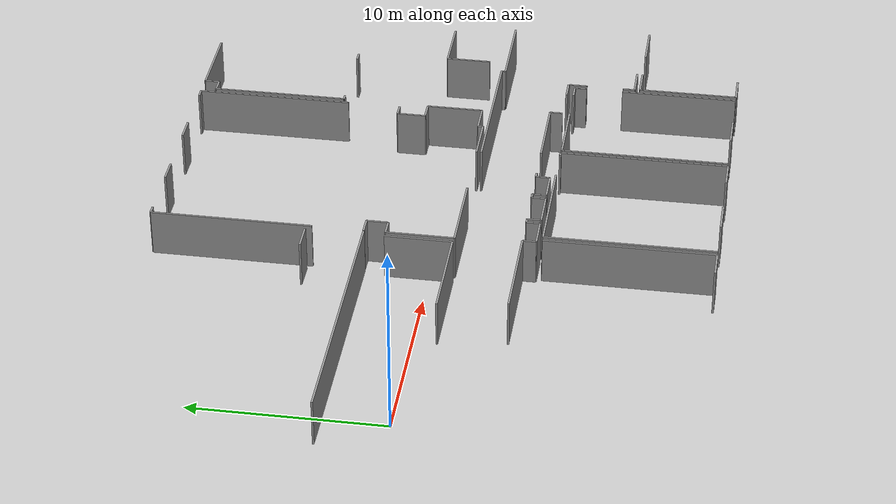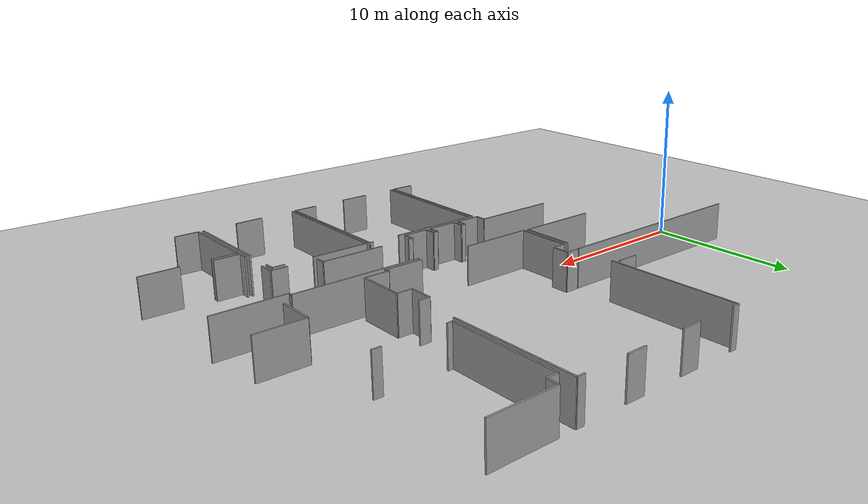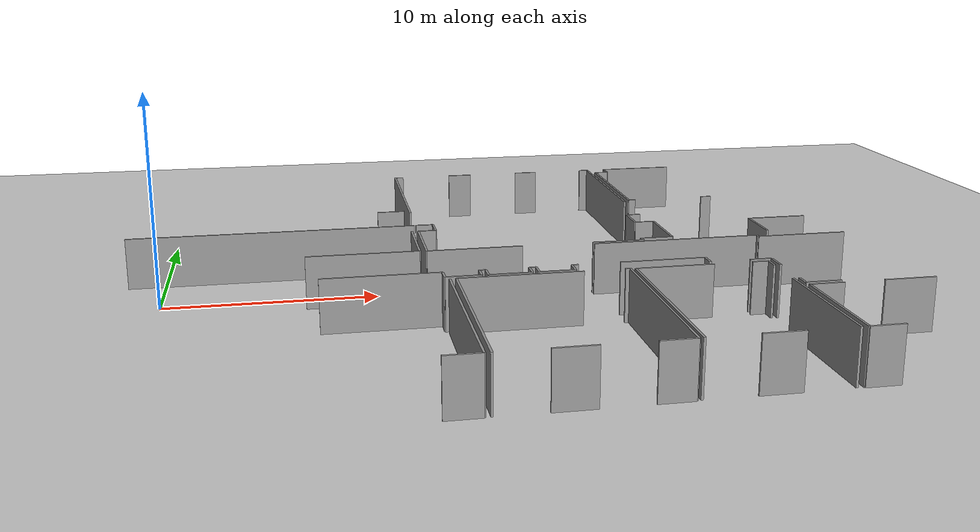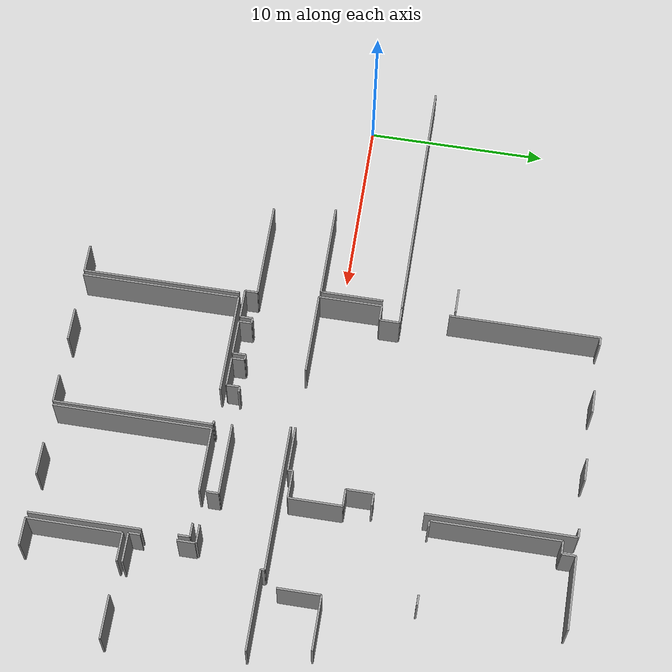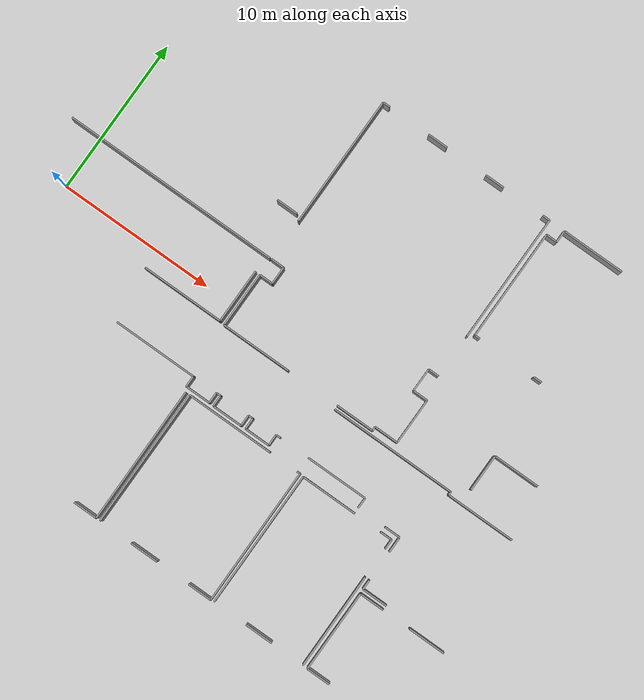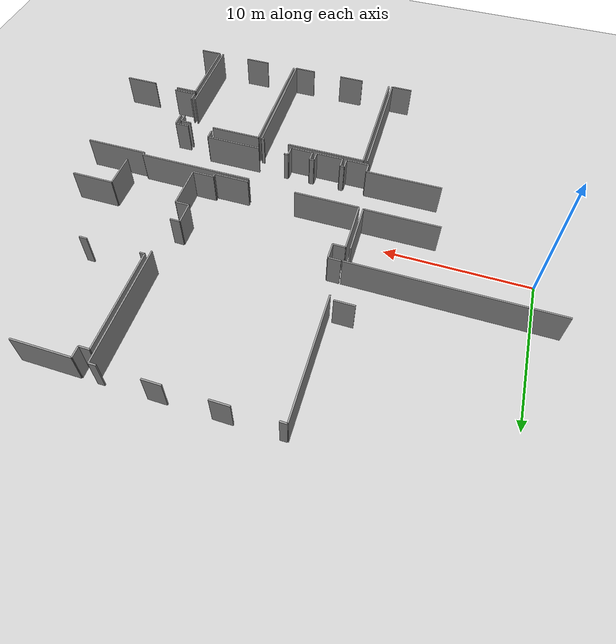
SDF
<sdf version="1.6">
 <world name="default">
  <model name="ground_plane">
   <static>1</static>
   <link name="link">
    <collision name="collision">
     <geometry><plane><normal>0 0 1</normal><size>100 100</size></plane></geometry>
     <surface><friction><ode><mu>100</mu><mu2>50</mu2></ode></friction></surface>
    </collision>
    <visual name="visual">
     <cast_shadows>0</cast_shadows>
     <geometry><plane><normal>0 0 1</normal><size>100 100</size></plane></geometry>
     <material>
      <script><uri>file://media/materials/scripts/gazebo.material</uri><name>Gazebo/Grey</name></script>
     </material>
    </visual>
   </link>
  </model>
  <model name="0510032262_A_40_1_104">
   <static>1</static>
   <link name="Wall_30">
    <collision name="Wall_30_Collision">
     <geometry><box><size>13.8981502047 0.1 2.5</size></box></geometry>
     <pose>6.94907510233 0 1.25 0 0 0</pose>
    </collision>
    <visual name="Wall_30_Visual">
     <pose>6.94907510233 0 1.25 0 0 0</pose>
     <geometry><box><size>13.8981502047 0.1 2.5</size></box></geometry>
     <material>
      <script><uri>file://media/materials/scripts/gazebo.material</uri><name>Gazebo/Grey</name></script>
      <ambient>1 1 1 1</ambient>
     </material>
    </visual>
    <pose>59.66608497 -11.0591744138 0 0 0 3.14159265359</pose>
   </link>
   <link name="Wall_78">
    <collision name="Wall_78_Collision">
     <geometry><box><size>1.37233873782 0.1 2.5</size></box></geometry>
     <pose>0.686169368912 0 1.25 0 0 0</pose>
    </collision>
    <visual name="Wall_78_Visual">
     <pose>0.686169368912 0 1.25 0 0 0</pose>
     <geometry><box><size>1.37233873782 0.1 2.5</size></box></geometry>
     <material>
      <script><uri>file://media/materials/scripts/gazebo.material</uri><name>Gazebo/Grey</name></script>
      <ambient>1 1 1 1</ambient>
     </material>
    </visual>
    <pose>59.4446171907 -8.09379065266 0 0 0 3.14159265359</pose>
   </link>
   <link name="Wall_143">
    <collision name="Wall_143_Collision">
     <geometry><box><size>8.13199225815 0.1 2.5</size></box></geometry>
     <pose>4.06599612907 0 1.25 0 0 0</pose>
    </collision>
    <visual name="Wall_143_Visual">
     <pose>4.06599612907 0 1.25 0 0 0</pose>
     <geometry><box><size>8.13199225815 0.1 2.5</size></box></geometry>
     <material>
      <script><uri>file://media/materials/scripts/gazebo.material</uri><name>Gazebo/Grey</name></script>
      <ambient>1 1 1 1</ambient>
     </material>
    </visual>
    <pose>67.6735729924 -15.9402227369 0 0 0 0.0</pose>
   </link>
   <link name="Wall_144">
    <collision name="Wall_144_Collision">
     <geometry><box><size>0.217787225942 0.1 2.5</size></box></geometry>
     <pose>0.108893612971 0 1.25 0 0 0</pose>
    </collision>
    <visual name="Wall_144_Visual">
     <pose>0.108893612971 0 1.25 0 0 0</pose>
     <geometry><box><size>0.217787225942 0.1 2.5</size></box></geometry>
     <material>
      <script><uri>file://media/materials/scripts/gazebo.material</uri><name>Gazebo/Grey</name></script>
      <ambient>1 1 1 1</ambient>
     </material>
    </visual>
    <pose>75.8055652505 -15.9402227369 0 0 0 -1.57079632679</pose>
   </link>
   <link name="Wall_145">
    <collision name="Wall_145_Collision">
     <geometry><box><size>4.41920233525 0.1 2.5</size></box></geometry>
     <pose>2.20960116762 0 1.25 0 0 0</pose>
    </collision>
    <visual name="Wall_145_Visual">
     <pose>2.20960116762 0 1.25 0 0 0</pose>
     <geometry><box><size>4.41920233525 0.1 2.5</size></box></geometry>
     <material>
      <script><uri>file://media/materials/scripts/gazebo.material</uri><name>Gazebo/Grey</name></script>
      <ambient>1 1 1 1</ambient>
     </material>
    </visual>
    <pose>75.8055652505 -16.1580099629 0 0 0 0.0</pose>
   </link>
   <link name="Wall_149">
    <collision name="Wall_149_Collision">
     <geometry><box><size>1.00859853412 0.1 2.5</size></box></geometry>
     <pose>0.504299267062 0 1.25 0 0 0</pose>
    </collision>
    <visual name="Wall_149_Visual">
     <pose>0.504299267062 0 1.25 0 0 0</pose>
     <geometry><box><size>1.00859853412 0.1 2.5</size></box></geometry>
     <material>
      <script><uri>file://media/materials/scripts/gazebo.material</uri><name>Gazebo/Grey</name></script>
      <ambient>1 1 1 1</ambient>
     </material>
    </visual>
    <pose>74.9202017959 -19.7441380842 0 0 0 3.14159265359</pose>
   </link>
   <link name="Wall_150">
    <collision name="Wall_150_Collision">
     <geometry><box><size>0.675952660469 0.1 2.5</size></box></geometry>
     <pose>0.337976330234 0 1.25 0 0 0</pose>
    </collision>
    <visual name="Wall_150_Visual">
     <pose>0.337976330234 0 1.25 0 0 0</pose>
     <geometry><box><size>0.675952660469 0.1 2.5</size></box></geometry>
     <material>
      <script><uri>file://media/materials/scripts/gazebo.material</uri><name>Gazebo/Grey</name></script>
      <ambient>1 1 1 1</ambient>
     </material>
    </visual>
    <pose>72.0332518958 -19.7441380842 0 0 0 1.57079632679</pose>
   </link>
   <link name="Wall_151">
    <collision name="Wall_151_Collision">
     <geometry><box><size>3.98883142431 0.1 2.5</size></box></geometry>
     <pose>1.99441571216 0 1.25 0 0 0</pose>
    </collision>
    <visual name="Wall_151_Visual">
     <pose>1.99441571216 0 1.25 0 0 0</pose>
     <geometry><box><size>3.98883142431 0.1 2.5</size></box></geometry>
     <material>
      <script><uri>file://media/materials/scripts/gazebo.material</uri><name>Gazebo/Grey</name></script>
      <ambient>1 1 1 1</ambient>
     </material>
    </visual>
    <pose>72.0332518958 -19.0681854237 0 0 0 3.14159265359</pose>
   </link>
   <link name="Wall_152">
    <collision name="Wall_152_Collision">
     <geometry><box><size>0.297490243361 0.1 2.5</size></box></geometry>
     <pose>0.14874512168 0 1.25 0 0 0</pose>
    </collision>
    <visual name="Wall_152_Visual">
     <pose>0.14874512168 0 1.25 0 0 0</pose>
     <geometry><box><size>0.297490243361 0.1 2.5</size></box></geometry>
     <material>
      <script><uri>file://media/materials/scripts/gazebo.material</uri><name>Gazebo/Grey</name></script>
      <ambient>1 1 1 1</ambient>
     </material>
    </visual>
    <pose>66.1046419393 -19.0681854237 0 0 0 3.14159265359</pose>
   </link>
   <link name="Wall_153">
    <collision name="Wall_153_Collision">
     <geometry><box><size>0.733445442142 0.1 2.5</size></box></geometry>
     <pose>0.366722721071 0 1.25 0 0 0</pose>
    </collision>
    <visual name="Wall_153_Visual">
     <pose>0.366722721071 0 1.25 0 0 0</pose>
     <geometry><box><size>0.733445442142 0.1 2.5</size></box></geometry>
     <material>
      <script><uri>file://media/materials/scripts/gazebo.material</uri><name>Gazebo/Grey</name></script>
      <ambient>1 1 1 1</ambient>
     </material>
    </visual>
    <pose>65.8071516959 -19.0681854237 0 0 0 -1.57079632679</pose>
   </link>
   <link name="Wall_154">
    <collision name="Wall_154_Collision">
     <geometry><box><size>1.62185487197 0.1 2.5</size></box></geometry>
     <pose>0.810927435987 0 1.25 0 0 0</pose>
    </collision>
    <visual name="Wall_154_Visual">
     <pose>0.810927435987 0 1.25 0 0 0</pose>
     <geometry><box><size>1.62185487197 0.1 2.5</size></box></geometry>
     <material>
      <script><uri>file://media/materials/scripts/gazebo.material</uri><name>Gazebo/Grey</name></script>
      <ambient>1 1 1 1</ambient>
     </material>
    </visual>
    <pose>65.8071516959 -19.8016308659 0 0 0 3.14159265359</pose>
   </link>
   <link name="Wall_155">
    <collision name="Wall_155_Collision">
     <geometry><box><size>0.719738553796 0.1 2.5</size></box></geometry>
     <pose>0.359869276898 0 1.25 0 0 0</pose>
    </collision>
    <visual name="Wall_155_Visual">
     <pose>0.359869276898 0 1.25 0 0 0</pose>
     <geometry><box><size>0.719738553796 0.1 2.5</size></box></geometry>
     <material>
      <script><uri>file://media/materials/scripts/gazebo.material</uri><name>Gazebo/Grey</name></script>
      <ambient>1 1 1 1</ambient>
     </material>
    </visual>
    <pose>64.1852968239 -19.8016308659 0 0 0 1.57079632679</pose>
   </link>
   <link name="Wall_156">
    <collision name="Wall_156_Collision">
     <geometry><box><size>0.307135831456 0.1 2.5</size></box></geometry>
     <pose>0.153567915728 0 1.25 0 0 0</pose>
    </collision>
    <visual name="Wall_156_Visual">
     <pose>0.153567915728 0 1.25 0 0 0</pose>
     <geometry><box><size>0.307135831456 0.1 2.5</size></box></geometry>
     <material>
      <script><uri>file://media/materials/scripts/gazebo.material</uri><name>Gazebo/Grey</name></script>
      <ambient>1 1 1 1</ambient>
     </material>
    </visual>
    <pose>64.1852968239 -19.0818923121 0 0 0 3.14159265359</pose>
   </link>
   <link name="Wall_157">
    <collision name="Wall_157_Collision">
     <geometry><box><size>0.729384141892 0.1 2.5</size></box></geometry>
     <pose>0.364692070946 0 1.25 0 0 0</pose>
    </collision>
    <visual name="Wall_157_Visual">
     <pose>0.364692070946 0 1.25 0 0 0</pose>
     <geometry><box><size>0.729384141892 0.1 2.5</size></box></geometry>
     <material>
      <script><uri>file://media/materials/scripts/gazebo.material</uri><name>Gazebo/Grey</name></script>
      <ambient>1 1 1 1</ambient>
     </material>
    </visual>
    <pose>63.8781609925 -19.0818923121 0 0 0 -1.57079632679</pose>
   </link>
   <link name="Wall_158">
    <collision name="Wall_158_Collision">
     <geometry><box><size>1.94218992924 0.1 2.5</size></box></geometry>
     <pose>0.971094964622 0 1.25 0 0 0</pose>
    </collision>
    <visual name="Wall_158_Visual">
     <pose>0.971094964622 0 1.25 0 0 0</pose>
     <geometry><box><size>1.94218992924 0.1 2.5</size></box></geometry>
     <material>
      <script><uri>file://media/materials/scripts/gazebo.material</uri><name>Gazebo/Grey</name></script>
      <ambient>1 1 1 1</ambient>
     </material>
    </visual>
    <pose>63.8781609925 -19.811276454 0 0 0 3.14159265359</pose>
   </link>
   <link name="Wall_159">
    <collision name="Wall_159_Collision">
     <geometry><box><size>0.71808865057 0.1 2.5</size></box></geometry>
     <pose>0.359044325285 0 1.25 0 0 0</pose>
    </collision>
    <visual name="Wall_159_Visual">
     <pose>0.359044325285 0 1.25 0 0 0</pose>
     <geometry><box><size>0.71808865057 0.1 2.5</size></box></geometry>
     <material>
      <script><uri>file://media/materials/scripts/gazebo.material</uri><name>Gazebo/Grey</name></script>
      <ambient>1 1 1 1</ambient>
     </material>
    </visual>
    <pose>61.9359710632 -19.811276454 0 0 0 1.57079632679</pose>
   </link>
   <link name="Wall_160">
    <collision name="Wall_160_Collision">
     <geometry><box><size>0.292159786782 0.1 2.5</size></box></geometry>
     <pose>0.146079893391 0 1.25 0 0 0</pose>
    </collision>
    <visual name="Wall_160_Visual">
     <pose>0.146079893391 0 1.25 0 0 0</pose>
     <geometry><box><size>0.292159786782 0.1 2.5</size></box></geometry>
     <material>
      <script><uri>file://media/materials/scripts/gazebo.material</uri><name>Gazebo/Grey</name></script>
      <ambient>1 1 1 1</ambient>
     </material>
    </visual>
    <pose>61.9359710632 -19.0931878034 0 0 0 3.14159265359</pose>
   </link>
   <link name="Wall_161">
    <collision name="Wall_161_Collision">
     <geometry><box><size>0.700955040137 0.1 2.5</size></box></geometry>
     <pose>0.350477520069 0 1.25 0 0 0</pose>
    </collision>
    <visual name="Wall_161_Visual">
     <pose>0.350477520069 0 1.25 0 0 0</pose>
     <geometry><box><size>0.700955040137 0.1 2.5</size></box></geometry>
     <material>
      <script><uri>file://media/materials/scripts/gazebo.material</uri><name>Gazebo/Grey</name></script>
      <ambient>1 1 1 1</ambient>
     </material>
    </visual>
    <pose>61.6438112765 -19.0931878034 0 0 0 -1.57079632679</pose>
   </link>
   <link name="Wall_162">
    <collision name="Wall_162_Collision">
     <geometry><box><size>1.61055938065 0.1 2.5</size></box></geometry>
     <pose>0.805279690326 0 1.25 0 0 0</pose>
    </collision>
    <visual name="Wall_162_Visual">
     <pose>0.805279690326 0 1.25 0 0 0</pose>
     <geometry><box><size>1.61055938065 0.1 2.5</size></box></geometry>
     <material>
      <script><uri>file://media/materials/scripts/gazebo.material</uri><name>Gazebo/Grey</name></script>
      <ambient>1 1 1 1</ambient>
     </material>
    </visual>
    <pose>61.6438112765 -19.7941428435 0 0 0 3.14159265359</pose>
   </link>
   <link name="Wall_163">
    <collision name="Wall_163_Collision">
     <geometry><box><size>0.700955040137 0.1 2.5</size></box></geometry>
     <pose>0.350477520069 0 1.25 0 0 0</pose>
    </collision>
    <visual name="Wall_163_Visual">
     <pose>0.350477520069 0 1.25 0 0 0</pose>
     <geometry><box><size>0.700955040137 0.1 2.5</size></box></geometry>
     <material>
      <script><uri>file://media/materials/scripts/gazebo.material</uri><name>Gazebo/Grey</name></script>
      <ambient>1 1 1 1</ambient>
     </material>
    </visual>
    <pose>60.0332518958 -19.7941428435 0 0 0 1.57079632679</pose>
   </link>
   <link name="Wall_164">
    <collision name="Wall_164_Collision">
     <geometry><box><size>5.35127074277 0.1 2.5</size></box></geometry>
     <pose>2.67563537139 0 1.25 0 0 0</pose>
    </collision>
    <visual name="Wall_164_Visual">
     <pose>2.67563537139 0 1.25 0 0 0</pose>
     <geometry><box><size>5.35127074277 0.1 2.5</size></box></geometry>
     <material>
      <script><uri>file://media/materials/scripts/gazebo.material</uri><name>Gazebo/Grey</name></script>
      <ambient>1 1 1 1</ambient>
     </material>
    </visual>
    <pose>60.0332518958 -19.0931878034 0 0 0 3.14159265359</pose>
   </link>
   <link name="Wall_213">
    <collision name="Wall_213_Collision">
     <geometry><box><size>1.54329409525 0.1 2.5</size></box></geometry>
     <pose>0.771647047625 0 1.25 0 0 0</pose>
    </collision>
    <visual name="Wall_213_Visual">
     <pose>0.771647047625 0 1.25 0 0 0</pose>
     <geometry><box><size>1.54329409525 0.1 2.5</size></box></geometry>
     <material>
      <script><uri>file://media/materials/scripts/gazebo.material</uri><name>Gazebo/Grey</name></script>
      <ambient>1 1 1 1</ambient>
     </material>
    </visual>
    <pose>60.2236253451 -28.8609956531 0 0 0 3.14159265359</pose>
   </link>
   <link name="Wall_219">
    <collision name="Wall_219_Collision">
     <geometry><box><size>8.78106027468 0.1 2.5</size></box></geometry>
     <pose>4.39053013734 0 1.25 0 0 0</pose>
    </collision>
    <visual name="Wall_219_Visual">
     <pose>4.39053013734 0 1.25 0 0 0</pose>
     <geometry><box><size>8.78106027468 0.1 2.5</size></box></geometry>
     <material>
      <script><uri>file://media/materials/scripts/gazebo.material</uri><name>Gazebo/Grey</name></script>
      <ambient>1 1 1 1</ambient>
     </material>
    </visual>
    <pose>60.2042072532 -20.0799568487 0 0 0 -1.56858496427</pose>
   </link>
   <link name="Wall_220">
    <collision name="Wall_220_Collision">
     <geometry><box><size>1.54837072056 0.1 2.5</size></box></geometry>
     <pose>0.774185360282 0 1.25 0 0 0</pose>
    </collision>
    <visual name="Wall_220_Visual">
     <pose>0.774185360282 0 1.25 0 0 0</pose>
     <geometry><box><size>1.54837072056 0.1 2.5</size></box></geometry>
     <material>
      <script><uri>file://media/materials/scripts/gazebo.material</uri><name>Gazebo/Grey</name></script>
      <ambient>1 1 1 1</ambient>
     </material>
    </visual>
    <pose>68.2320017768 -28.8736872164 0 0 0 3.14159265359</pose>
   </link>
   <link name="Wall_221">
    <collision name="Wall_221_Collision">
     <geometry><box><size>1.82339689691 0.1 2.5</size></box></geometry>
     <pose>0.911698448456 0 1.25 0 0 0</pose>
    </collision>
    <visual name="Wall_221_Visual">
     <pose>0.911698448456 0 1.25 0 0 0</pose>
     <geometry><box><size>1.82339689691 0.1 2.5</size></box></geometry>
     <material>
      <script><uri>file://media/materials/scripts/gazebo.material</uri><name>Gazebo/Grey</name></script>
      <ambient>1 1 1 1</ambient>
     </material>
    </visual>
    <pose>64.4827870673 -28.8736872164 0 0 0 3.14159265359</pose>
   </link>
   <link name="Wall_222">
    <collision name="Wall_222_Collision">
     <geometry><box><size>8.79373036774 0.1 2.5</size></box></geometry>
     <pose>4.39686518387 0 1.25 0 0 0</pose>
    </collision>
    <visual name="Wall_222_Visual">
     <pose>4.39686518387 0 1.25 0 0 0</pose>
     <geometry><box><size>8.79373036774 0.1 2.5</size></box></geometry>
     <material>
      <script><uri>file://media/materials/scripts/gazebo.material</uri><name>Gazebo/Grey</name></script>
      <ambient>1 1 1 1</ambient>
     </material>
    </visual>
    <pose>60.4906558365 -28.8736872164 0 0 0 1.57079632679</pose>
   </link>
   <link name="Wall_223">
    <collision name="Wall_223_Collision">
     <geometry><box><size>5.62363169083 0.1 2.5</size></box></geometry>
     <pose>2.81181584542 0 1.25 0 0 0</pose>
    </collision>
    <visual name="Wall_223_Visual">
     <pose>2.81181584542 0 1.25 0 0 0</pose>
     <geometry><box><size>5.62363169083 0.1 2.5</size></box></geometry>
     <material>
      <script><uri>file://media/materials/scripts/gazebo.material</uri><name>Gazebo/Grey</name></script>
      <ambient>1 1 1 1</ambient>
     </material>
    </visual>
    <pose>60.4906558365 -20.0799568487 0 0 0 0.0</pose>
   </link>
   <link name="Wall_224">
    <collision name="Wall_224_Collision">
     <geometry><box><size>0.216898816512 0.1 2.5</size></box></geometry>
     <pose>0.108449408256 0 1.25 0 0 0</pose>
    </collision>
    <visual name="Wall_224_Visual">
     <pose>0.108449408256 0 1.25 0 0 0</pose>
     <geometry><box><size>0.216898816512 0.1 2.5</size></box></geometry>
     <material>
      <script><uri>file://media/materials/scripts/gazebo.material</uri><name>Gazebo/Grey</name></script>
      <ambient>1 1 1 1</ambient>
     </material>
    </visual>
    <pose>67.9860392804 -20.0799568487 0 0 0 0.0</pose>
   </link>
   <link name="Wall_225">
    <collision name="Wall_225_Collision">
     <geometry><box><size>8.793778396 0.1 2.5</size></box></geometry>
     <pose>4.396889198 0 1.25 0 0 0</pose>
    </collision>
    <visual name="Wall_225_Visual">
     <pose>4.396889198 0 1.25 0 0 0</pose>
     <geometry><box><size>8.793778396 0.1 2.5</size></box></geometry>
     <material>
      <script><uri>file://media/materials/scripts/gazebo.material</uri><name>Gazebo/Grey</name></script>
      <ambient>1 1 1 1</ambient>
     </material>
    </visual>
    <pose>68.2029380969 -20.0799568487 0 0 0 -1.56749129322</pose>
   </link>
   <link name="Wall_226">
    <collision name="Wall_226_Collision">
     <geometry><box><size>1.80220198623 0.1 2.5</size></box></geometry>
     <pose>0.901100993115 0 1.25 0 0 0</pose>
    </collision>
    <visual name="Wall_226_Visual">
     <pose>0.901100993115 0 1.25 0 0 0</pose>
     <geometry><box><size>1.80220198623 0.1 2.5</size></box></geometry>
     <material>
      <script><uri>file://media/materials/scripts/gazebo.material</uri><name>Gazebo/Grey</name></script>
      <ambient>1 1 1 1</ambient>
     </material>
    </visual>
    <pose>72.4836754767 -28.8483040899 0 0 0 3.14159265359</pose>
   </link>
   <link name="Wall_227">
    <collision name="Wall_227_Collision">
     <geometry><box><size>8.72849573246 0.1 2.5</size></box></geometry>
     <pose>4.36424786623 0 1.25 0 0 0</pose>
    </collision>
    <visual name="Wall_227_Visual">
     <pose>4.36424786623 0 1.25 0 0 0</pose>
     <geometry><box><size>8.72849573246 0.1 2.5</size></box></geometry>
     <material>
      <script><uri>file://media/materials/scripts/gazebo.material</uri><name>Gazebo/Grey</name></script>
      <ambient>1 1 1 1</ambient>
     </material>
    </visual>
    <pose>68.4477583526 -28.8483040899 0 0 0 1.57079632679</pose>
   </link>
   <link name="Wall_228">
    <collision name="Wall_228_Collision">
     <geometry><box><size>3.61544563252 0.1 2.5</size></box></geometry>
     <pose>1.80772281626 0 1.25 0 0 0</pose>
    </collision>
    <visual name="Wall_228_Visual">
     <pose>1.80772281626 0 1.25 0 0 0</pose>
     <geometry><box><size>3.61544563252 0.1 2.5</size></box></geometry>
     <material>
      <script><uri>file://media/materials/scripts/gazebo.material</uri><name>Gazebo/Grey</name></script>
      <ambient>1 1 1 1</ambient>
     </material>
    </visual>
    <pose>68.4477583526 -20.1198083574 0 0 0 0.0</pose>
   </link>
   <link name="Wall_229">
    <collision name="Wall_229_Collision">
     <geometry><box><size>0.767712663007 0.1 2.5</size></box></geometry>
     <pose>0.383856331504 0 1.25 0 0 0</pose>
    </collision>
    <visual name="Wall_229_Visual">
     <pose>0.383856331504 0 1.25 0 0 0</pose>
     <geometry><box><size>0.767712663007 0.1 2.5</size></box></geometry>
     <material>
      <script><uri>file://media/materials/scripts/gazebo.material</uri><name>Gazebo/Grey</name></script>
      <ambient>1 1 1 1</ambient>
     </material>
    </visual>
    <pose>73.8774629565 -20.1198083574 0 0 0 0.0</pose>
   </link>
   <link name="Wall_230">
    <collision name="Wall_230_Collision">
     <geometry><box><size>0.642320017768 0.1 2.5</size></box></geometry>
     <pose>0.321160008884 0 1.25 0 0 0</pose>
    </collision>
    <visual name="Wall_230_Visual">
     <pose>0.321160008884 0 1.25 0 0 0</pose>
     <geometry><box><size>0.642320017768 0.1 2.5</size></box></geometry>
     <material>
      <script><uri>file://media/materials/scripts/gazebo.material</uri><name>Gazebo/Grey</name></script>
      <ambient>1 1 1 1</ambient>
     </material>
    </visual>
    <pose>74.6451756195 -20.1198083574 0 0 0 -1.57079632679</pose>
   </link>
   <link name="Wall_231">
    <collision name="Wall_231_Collision">
     <geometry><box><size>6.13348929104 0.1 2.5</size></box></geometry>
     <pose>3.06674464552 0 1.25 0 0 0</pose>
    </collision>
    <visual name="Wall_231_Visual">
     <pose>3.06674464552 0 1.25 0 0 0</pose>
     <geometry><box><size>6.13348929104 0.1 2.5</size></box></geometry>
     <material>
      <script><uri>file://media/materials/scripts/gazebo.material</uri><name>Gazebo/Grey</name></script>
      <ambient>1 1 1 1</ambient>
     </material>
    </visual>
    <pose>74.6451756195 -22.7148523019 0 0 0 -1.5672993311</pose>
   </link>
   <link name="Wall_234">
    <collision name="Wall_234_Collision">
     <geometry><box><size>1.63987689184 0.1 2.5</size></box></geometry>
     <pose>0.819938445918 0 1.25 0 0 0</pose>
    </collision>
    <visual name="Wall_234_Visual">
     <pose>0.819938445918 0 1.25 0 0 0</pose>
     <geometry><box><size>1.63987689184 0.1 2.5</size></box></geometry>
     <material>
      <script><uri>file://media/materials/scripts/gazebo.material</uri><name>Gazebo/Grey</name></script>
      <ambient>1 1 1 1</ambient>
     </material>
    </visual>
    <pose>76.5746739855 -23.3528571882 0 0 0 3.14159265359</pose>
   </link>
   <link name="Wall_235">
    <collision name="Wall_235_Collision">
     <geometry><box><size>0.635085826697 0.1 2.5</size></box></geometry>
     <pose>0.317542913348 0 1.25 0 0 0</pose>
    </collision>
    <visual name="Wall_235_Visual">
     <pose>0.317542913348 0 1.25 0 0 0</pose>
     <geometry><box><size>0.635085826697 0.1 2.5</size></box></geometry>
     <material>
      <script><uri>file://media/materials/scripts/gazebo.material</uri><name>Gazebo/Grey</name></script>
      <ambient>1 1 1 1</ambient>
     </material>
    </visual>
    <pose>74.9347970936 -23.3528571882 0 0 0 1.57079632679</pose>
   </link>
   <link name="Wall_236">
    <collision name="Wall_236_Collision">
     <geometry><box><size>0.969635434845 0.1 2.5</size></box></geometry>
     <pose>0.484817717422 0 1.25 0 0 0</pose>
    </collision>
    <visual name="Wall_236_Visual">
     <pose>0.484817717422 0 1.25 0 0 0</pose>
     <geometry><box><size>0.969635434845 0.1 2.5</size></box></geometry>
     <material>
      <script><uri>file://media/materials/scripts/gazebo.material</uri><name>Gazebo/Grey</name></script>
      <ambient>1 1 1 1</ambient>
     </material>
    </visual>
    <pose>74.9347970936 -20.7684741568 0 0 0 1.57079632679</pose>
   </link>
   <link name="Wall_243">
    <collision name="Wall_243_Collision">
     <geometry><box><size>1.52704889425 0.1 2.5</size></box></geometry>
     <pose>0.763524447124 0 1.25 0 0 0</pose>
    </collision>
    <visual name="Wall_243_Visual">
     <pose>0.763524447124 0 1.25 0 0 0</pose>
     <geometry><box><size>1.52704889425 0.1 2.5</size></box></geometry>
     <material>
      <script><uri>file://media/materials/scripts/gazebo.material</uri><name>Gazebo/Grey</name></script>
      <ambient>1 1 1 1</ambient>
     </material>
    </visual>
    <pose>76.5061395437 -28.8604879906 0 0 0 3.14159265359</pose>
   </link>
   <link name="Wall_244">
    <collision name="Wall_244_Collision">
     <geometry><box><size>5.21382111242 0.1 2.5</size></box></geometry>
     <pose>2.60691055621 0 1.25 0 0 0</pose>
    </collision>
    <visual name="Wall_244_Visual">
     <pose>2.60691055621 0 1.25 0 0 0</pose>
     <geometry><box><size>5.21382111242 0.1 2.5</size></box></geometry>
     <material>
      <script><uri>file://media/materials/scripts/gazebo.material</uri><name>Gazebo/Grey</name></script>
      <ambient>1 1 1 1</ambient>
     </material>
    </visual>
    <pose>74.9790906495 -28.8604879906 0 0 0 1.57079632679</pose>
   </link>
   <link name="Wall_245">
    <collision name="Wall_245_Collision">
     <geometry><box><size>1.58111495383 0.1 2.5</size></box></geometry>
     <pose>0.790557476917 0 1.25 0 0 0</pose>
    </collision>
    <visual name="Wall_245_Visual">
     <pose>0.790557476917 0 1.25 0 0 0</pose>
     <geometry><box><size>1.58111495383 0.1 2.5</size></box></geometry>
     <material>
      <script><uri>file://media/materials/scripts/gazebo.material</uri><name>Gazebo/Grey</name></script>
      <ambient>1 1 1 1</ambient>
     </material>
    </visual>
    <pose>74.9790906495 -23.6466668782 0 0 0 0.0</pose>
   </link>
   <link name="Wall_246">
    <collision name="Wall_246_Collision">
     <geometry><box><size>2.37839895929 0.1 2.5</size></box></geometry>
     <pose>1.18919947965 0 1.25 0 0 0</pose>
    </collision>
    <visual name="Wall_246_Visual">
     <pose>1.18919947965 0 1.25 0 0 0</pose>
     <geometry><box><size>2.37839895929 0.1 2.5</size></box></geometry>
     <material>
      <script><uri>file://media/materials/scripts/gazebo.material</uri><name>Gazebo/Grey</name></script>
      <ambient>1 1 1 1</ambient>
     </material>
    </visual>
    <pose>78.4087317955 -23.6466668782 0 0 0 0.0</pose>
   </link>
   <link name="Wall_272">
    <collision name="Wall_272_Collision">
     <geometry><box><size>5.24986515214 0.1 2.5</size></box></geometry>
     <pose>2.62493257607 0 1.25 0 0 0</pose>
    </collision>
    <visual name="Wall_272_Visual">
     <pose>2.62493257607 0 1.25 0 0 0</pose>
     <geometry><box><size>5.24986515214 0.1 2.5</size></box></geometry>
     <material>
      <script><uri>file://media/materials/scripts/gazebo.material</uri><name>Gazebo/Grey</name></script>
      <ambient>1 1 1 1</ambient>
     </material>
    </visual>
    <pose>59.4243106895 -15.6278833645 0 0 0 3.14159265359</pose>
   </link>
   <link name="Wall_280">
    <collision name="Wall_280_Collision">
     <geometry><box><size>3.47393615087 0.1 2.5</size></box></geometry>
     <pose>1.73696807544 0 1.25 0 0 0</pose>
    </collision>
    <visual name="Wall_280_Visual">
     <pose>1.73696807544 0 1.25 0 0 0</pose>
     <geometry><box><size>3.47393615087 0.1 2.5</size></box></geometry>
     <material>
      <script><uri>file://media/materials/scripts/gazebo.material</uri><name>Gazebo/Grey</name></script>
      <ambient>1 1 1 1</ambient>
     </material>
    </visual>
    <pose>59.4274835803 -12.1539486626 0 0 0 -1.57170966864</pose>
   </link>
   <link name="Wall_281">
    <collision name="Wall_281_Collision">
     <geometry><box><size>2.50176095441 0.1 2.5</size></box></geometry>
     <pose>1.2508804772 0 1.25 0 0 0</pose>
    </collision>
    <visual name="Wall_281_Visual">
     <pose>1.2508804772 0 1.25 0 0 0</pose>
     <geometry><box><size>2.50176095441 0.1 2.5</size></box></geometry>
     <material>
      <script><uri>file://media/materials/scripts/gazebo.material</uri><name>Gazebo/Grey</name></script>
      <ambient>1 1 1 1</ambient>
     </material>
    </visual>
    <pose>70.1611193959 -15.6871529651 0 0 0 3.14159265359</pose>
   </link>
   <link name="Wall_282">
    <collision name="Wall_282_Collision">
     <geometry><box><size>4.51388139734 0.1 2.5</size></box></geometry>
     <pose>2.25694069867 0 1.25 0 0 0</pose>
    </collision>
    <visual name="Wall_282_Visual">
     <pose>2.25694069867 0 1.25 0 0 0</pose>
     <geometry><box><size>4.51388139734 0.1 2.5</size></box></geometry>
     <material>
      <script><uri>file://media/materials/scripts/gazebo.material</uri><name>Gazebo/Grey</name></script>
      <ambient>1 1 1 1</ambient>
     </material>
    </visual>
    <pose>64.2606847098 -15.6871529651 0 0 0 3.14159265359</pose>
   </link>
   <link name="Wall_283">
    <collision name="Wall_283_Collision">
     <geometry><box><size>3.52025890789 0.1 2.5</size></box></geometry>
     <pose>1.76012945395 0 1.25 0 0 0</pose>
    </collision>
    <visual name="Wall_283_Visual">
     <pose>1.76012945395 0 1.25 0 0 0</pose>
     <geometry><box><size>3.52025890789 0.1 2.5</size></box></geometry>
     <material>
      <script><uri>file://media/materials/scripts/gazebo.material</uri><name>Gazebo/Grey</name></script>
      <ambient>1 1 1 1</ambient>
     </material>
    </visual>
    <pose>59.7468033125 -15.6871529651 0 0 0 1.57079632679</pose>
   </link>
   <link name="Wall_284">
    <collision name="Wall_284_Collision">
     <geometry><box><size>0.862264809468 0.1 2.5</size></box></geometry>
     <pose>0.431132404734 0 1.25 0 0 0</pose>
    </collision>
    <visual name="Wall_284_Visual">
     <pose>0.431132404734 0 1.25 0 0 0</pose>
     <geometry><box><size>0.862264809468 0.1 2.5</size></box></geometry>
     <material>
      <script><uri>file://media/materials/scripts/gazebo.material</uri><name>Gazebo/Grey</name></script>
      <ambient>1 1 1 1</ambient>
     </material>
    </visual>
    <pose>59.7468033125 -12.1668940572 0 0 0 0.0</pose>
   </link>
   <link name="Wall_285">
    <collision name="Wall_285_Collision">
     <geometry><box><size>1.12003045975 0.1 2.5</size></box></geometry>
     <pose>0.560015229876 0 1.25 0 0 0</pose>
    </collision>
    <visual name="Wall_285_Visual">
     <pose>0.560015229876 0 1.25 0 0 0</pose>
     <geometry><box><size>1.12003045975 0.1 2.5</size></box></geometry>
     <material>
      <script><uri>file://media/materials/scripts/gazebo.material</uri><name>Gazebo/Grey</name></script>
      <ambient>1 1 1 1</ambient>
     </material>
    </visual>
    <pose>60.609068122 -12.1668940572 0 0 0 1.57079632679</pose>
   </link>
   <link name="Wall_286">
    <collision name="Wall_286_Collision">
     <geometry><box><size>0.863026303265 0.1 2.5</size></box></geometry>
     <pose>0.431513151632 0 1.25 0 0 0</pose>
    </collision>
    <visual name="Wall_286_Visual">
     <pose>0.431513151632 0 1.25 0 0 0</pose>
     <geometry><box><size>0.863026303265 0.1 2.5</size></box></geometry>
     <material>
      <script><uri>file://media/materials/scripts/gazebo.material</uri><name>Gazebo/Grey</name></script>
      <ambient>1 1 1 1</ambient>
     </material>
    </visual>
    <pose>60.609068122 -11.0468635974 0 0 0 3.14159265359</pose>
   </link>
   <link name="Wall_287">
    <collision name="Wall_287_Collision">
     <geometry><box><size>8.36526319129 0.1 2.5</size></box></geometry>
     <pose>4.18263159565 0 1.25 0 0 0</pose>
    </collision>
    <visual name="Wall_287_Visual">
     <pose>4.18263159565 0 1.25 0 0 0</pose>
     <geometry><box><size>8.36526319129 0.1 2.5</size></box></geometry>
     <material>
      <script><uri>file://media/materials/scripts/gazebo.material</uri><name>Gazebo/Grey</name></script>
      <ambient>1 1 1 1</ambient>
     </material>
    </visual>
    <pose>59.7460418187 -8.39940349653 0 0 0 1.57079632679</pose>
   </link>
   <link name="Wall_288">
    <collision name="Wall_288_Collision">
     <geometry><box><size>0.458165434527 0.1 2.5</size></box></geometry>
     <pose>0.229082717264 0 1.25 0 0 0</pose>
    </collision>
    <visual name="Wall_288_Visual">
     <pose>0.229082717264 0 1.25 0 0 0</pose>
     <geometry><box><size>0.458165434527 0.1 2.5</size></box></geometry>
     <material>
      <script><uri>file://media/materials/scripts/gazebo.material</uri><name>Gazebo/Grey</name></script>
      <ambient>1 1 1 1</ambient>
     </material>
    </visual>
    <pose>59.7460418187 -0.0341403052321 0 0 0 0.0</pose>
   </link>
   <link name="Wall_289">
    <collision name="Wall_289_Collision">
     <geometry><box><size>1.28337087921 0.1 2.5</size></box></geometry>
     <pose>0.641685439604 0 1.25 0 0 0</pose>
    </collision>
    <visual name="Wall_289_Visual">
     <pose>0.641685439604 0 1.25 0 0 0</pose>
     <geometry><box><size>1.28337087921 0.1 2.5</size></box></geometry>
     <material>
      <script><uri>file://media/materials/scripts/gazebo.material</uri><name>Gazebo/Grey</name></script>
      <ambient>1 1 1 1</ambient>
     </material>
    </visual>
    <pose>62.9288320589 -0.0341403052321 0 0 0 0.0</pose>
   </link>
   <link name="Wall_290">
    <collision name="Wall_290_Collision">
     <geometry><box><size>1.25481486182 0.1 2.5</size></box></geometry>
     <pose>0.62740743091 0 1.25 0 0 0</pose>
    </collision>
    <visual name="Wall_290_Visual">
     <pose>0.62740743091 0 1.25 0 0 0</pose>
     <geometry><box><size>1.25481486182 0.1 2.5</size></box></geometry>
     <material>
      <script><uri>file://media/materials/scripts/gazebo.material</uri><name>Gazebo/Grey</name></script>
      <ambient>1 1 1 1</ambient>
     </material>
    </visual>
    <pose>66.9413967065 -0.0341403052321 0 0 0 0.0</pose>
   </link>
   <link name="Wall_291">
    <collision name="Wall_291_Collision">
     <geometry><box><size>0.481898657867 0.1 2.5</size></box></geometry>
     <pose>0.240949328934 0 1.25 0 0 0</pose>
    </collision>
    <visual name="Wall_291_Visual">
     <pose>0.240949328934 0 1.25 0 0 0</pose>
     <geometry><box><size>0.481898657867 0.1 2.5</size></box></geometry>
     <material>
      <script><uri>file://media/materials/scripts/gazebo.material</uri><name>Gazebo/Grey</name></script>
      <ambient>1 1 1 1</ambient>
     </material>
    </visual>
    <pose>70.9301012152 -0.0341403052321 0 0 0 0.0</pose>
   </link>
   <link name="Wall_292">
    <collision name="Wall_292_Collision">
     <geometry><box><size>8.15559856585 0.1 2.5</size></box></geometry>
     <pose>4.07779928293 0 1.25 0 0 0</pose>
    </collision>
    <visual name="Wall_292_Visual">
     <pose>4.07779928293 0 1.25 0 0 0</pose>
     <geometry><box><size>8.15559856585 0.1 2.5</size></box></geometry>
     <material>
      <script><uri>file://media/materials/scripts/gazebo.material</uri><name>Gazebo/Grey</name></script>
      <ambient>1 1 1 1</ambient>
     </material>
    </visual>
    <pose>71.4119998731 -0.0341403052321 0 0 0 -1.57079632679</pose>
   </link>
   <link name="Wall_293">
    <collision name="Wall_293_Collision">
     <geometry><box><size>0.693213186534 0.1 2.5</size></box></geometry>
     <pose>0.346606593267 0 1.25 0 0 0</pose>
    </collision>
    <visual name="Wall_293_Visual">
     <pose>0.346606593267 0 1.25 0 0 0</pose>
     <geometry><box><size>0.693213186534 0.1 2.5</size></box></geometry>
     <material>
      <script><uri>file://media/materials/scripts/gazebo.material</uri><name>Gazebo/Grey</name></script>
      <ambient>1 1 1 1</ambient>
     </material>
    </visual>
    <pose>71.4119998731 -10.9769330837 0 0 0 3.14159265359</pose>
   </link>
   <link name="Wall_294">
    <collision name="Wall_294_Collision">
     <geometry><box><size>1.49874670813 0.1 2.5</size></box></geometry>
     <pose>0.749373354063 0 1.25 0 0 0</pose>
    </collision>
    <visual name="Wall_294_Visual">
     <pose>0.749373354063 0 1.25 0 0 0</pose>
     <geometry><box><size>1.49874670813 0.1 2.5</size></box></geometry>
     <material>
      <script><uri>file://media/materials/scripts/gazebo.material</uri><name>Gazebo/Grey</name></script>
      <ambient>1 1 1 1</ambient>
     </material>
    </visual>
    <pose>70.7187866866 -10.9769330837 0 0 0 -1.57079632679</pose>
   </link>
   <link name="Wall_295">
    <collision name="Wall_295_Collision">
     <geometry><box><size>0.964051147 0.1 2.5</size></box></geometry>
     <pose>0.4820255735 0 1.25 0 0 0</pose>
    </collision>
    <visual name="Wall_295_Visual">
     <pose>0.4820255735 0 1.25 0 0 0</pose>
     <geometry><box><size>0.964051147 0.1 2.5</size></box></geometry>
     <material>
      <script><uri>file://media/materials/scripts/gazebo.material</uri><name>Gazebo/Grey</name></script>
      <ambient>1 1 1 1</ambient>
     </material>
    </visual>
    <pose>70.7187866866 -12.4756797919 0 0 0 0.0</pose>
   </link>
   <link name="Wall_296">
    <collision name="Wall_296_Collision">
     <geometry><box><size>2.94939239141 0.1 2.5</size></box></geometry>
     <pose>1.4746961957 0 1.25 0 0 0</pose>
    </collision>
    <visual name="Wall_296_Visual">
     <pose>1.4746961957 0 1.25 0 0 0</pose>
     <geometry><box><size>2.94939239141 0.1 2.5</size></box></geometry>
     <material>
      <script><uri>file://media/materials/scripts/gazebo.material</uri><name>Gazebo/Grey</name></script>
      <ambient>1 1 1 1</ambient>
     </material>
    </visual>
    <pose>71.6828378336 -12.4756797919 0 0 0 -1.57079632679</pose>
   </link>
   <link name="Wall_297">
    <collision name="Wall_297_Collision">
     <geometry><box><size>1.55903163372 0.1 2.5</size></box></geometry>
     <pose>0.779515816861 0 1.25 0 0 0</pose>
    </collision>
    <visual name="Wall_297_Visual">
     <pose>0.779515816861 0 1.25 0 0 0</pose>
     <geometry><box><size>1.55903163372 0.1 2.5</size></box></geometry>
     <material>
      <script><uri>file://media/materials/scripts/gazebo.material</uri><name>Gazebo/Grey</name></script>
      <ambient>1 1 1 1</ambient>
     </material>
    </visual>
    <pose>71.6828378336 -15.4250721833 0 0 0 3.14159265359</pose>
   </link>
   <link name="Wall_298">
    <collision name="Wall_298_Collision">
     <geometry><box><size>0.264723649848 0.1 2.5</size></box></geometry>
     <pose>0.132361824924 0 1.25 0 0 0</pose>
    </collision>
    <visual name="Wall_298_Visual">
     <pose>0.132361824924 0 1.25 0 0 0</pose>
     <geometry><box><size>0.264723649848 0.1 2.5</size></box></geometry>
     <material>
      <script><uri>file://media/materials/scripts/gazebo.material</uri><name>Gazebo/Grey</name></script>
      <ambient>1 1 1 1</ambient>
     </material>
    </visual>
    <pose>70.1238061998 -15.4250721833 0 0 0 -1.4293738806</pose>
   </link>
   <link name="Wall_300">
    <collision name="Wall_300_Collision">
     <geometry><box><size>0.550813846496 0.1 2.5</size></box></geometry>
     <pose>0.275406923248 0 1.25 0 0 0</pose>
    </collision>
    <visual name="Wall_300_Visual">
     <pose>0.275406923248 0 1.25 0 0 0</pose>
     <geometry><box><size>0.550813846496 0.1 2.5</size></box></geometry>
     <material>
      <script><uri>file://media/materials/scripts/gazebo.material</uri><name>Gazebo/Grey</name></script>
      <ambient>1 1 1 1</ambient>
     </material>
    </visual>
    <pose>76.4060031094 -7.86090046641 0 0 0 3.14159265359</pose>
   </link>
   <link name="Wall_301">
    <collision name="Wall_301_Collision">
     <geometry><box><size>0.350414062252 0.1 2.5</size></box></geometry>
     <pose>0.175207031126 0 1.25 0 0 0</pose>
    </collision>
    <visual name="Wall_301_Visual">
     <pose>0.175207031126 0 1.25 0 0 0</pose>
     <geometry><box><size>0.350414062252 0.1 2.5</size></box></geometry>
     <material>
      <script><uri>file://media/materials/scripts/gazebo.material</uri><name>Gazebo/Grey</name></script>
      <ambient>1 1 1 1</ambient>
     </material>
    </visual>
    <pose>72.0916330869 -7.86090046641 0 0 0 3.14159265359</pose>
   </link>
   <link name="Wall_302">
    <collision name="Wall_302_Collision">
     <geometry><box><size>7.05828600438 0.1 2.5</size></box></geometry>
     <pose>3.52914300219 0 1.25 0 0 0</pose>
    </collision>
    <visual name="Wall_302_Visual">
     <pose>3.52914300219 0 1.25 0 0 0</pose>
     <geometry><box><size>7.05828600438 0.1 2.5</size></box></geometry>
     <material>
      <script><uri>file://media/materials/scripts/gazebo.material</uri><name>Gazebo/Grey</name></script>
      <ambient>1 1 1 1</ambient>
     </material>
    </visual>
    <pose>71.7412190247 -7.86090046641 0 0 0 1.57079632679</pose>
   </link>
   <link name="Wall_303">
    <collision name="Wall_303_Collision">
     <geometry><box><size>0.714788844116 0.1 2.5</size></box></geometry>
     <pose>0.357394422058 0 1.25 0 0 0</pose>
    </collision>
    <visual name="Wall_303_Visual">
     <pose>0.357394422058 0 1.25 0 0 0</pose>
     <geometry><box><size>0.714788844116 0.1 2.5</size></box></geometry>
     <material>
      <script><uri>file://media/materials/scripts/gazebo.material</uri><name>Gazebo/Grey</name></script>
      <ambient>1 1 1 1</ambient>
     </material>
    </visual>
    <pose>71.7412190247 -0.802614462036 0 0 0 0.0</pose>
   </link>
   <link name="Wall_304">
    <collision name="Wall_304_Collision">
     <geometry><box><size>0.757178665482 0.1 2.5</size></box></geometry>
     <pose>0.378589332741 0 1.25 0 0 0</pose>
    </collision>
    <visual name="Wall_304_Visual">
     <pose>0.378589332741 0 1.25 0 0 0</pose>
     <geometry><box><size>0.757178665482 0.1 2.5</size></box></geometry>
     <material>
      <script><uri>file://media/materials/scripts/gazebo.material</uri><name>Gazebo/Grey</name></script>
      <ambient>1 1 1 1</ambient>
     </material>
    </visual>
    <pose>72.4560078688 -0.802614462036 0 0 0 1.57079632679</pose>
   </link>
   <link name="Wall_305">
    <collision name="Wall_305_Collision">
     <geometry><box><size>4.02182948885 0.1 2.5</size></box></geometry>
     <pose>2.01091474442 0 1.25 0 0 0</pose>
    </collision>
    <visual name="Wall_305_Visual">
     <pose>2.01091474442 0 1.25 0 0 0</pose>
     <geometry><box><size>4.02182948885 0.1 2.5</size></box></geometry>
     <material>
      <script><uri>file://media/materials/scripts/gazebo.material</uri><name>Gazebo/Grey</name></script>
      <ambient>1 1 1 1</ambient>
     </material>
    </visual>
    <pose>72.4560078688 -0.0454357965542 0 0 0 0.0</pose>
   </link>
   <link name="Wall_335">
    <collision name="Wall_335_Collision">
     <geometry><box><size>2.36075768633 0.1 2.5</size></box></geometry>
     <pose>1.18037884316 0 1.25 0 0 0</pose>
    </collision>
    <visual name="Wall_335_Visual">
     <pose>1.18037884316 0 1.25 0 0 0</pose>
     <geometry><box><size>2.36075768633 0.1 2.5</size></box></geometry>
     <material>
      <script><uri>file://media/materials/scripts/gazebo.material</uri><name>Gazebo/Grey</name></script>
      <ambient>1 1 1 1</ambient>
     </material>
    </visual>
    <pose>76.6704952883 -15.1760637116 0 0 0 1.57079632679</pose>
   </link>
   <link name="Wall_336">
    <collision name="Wall_336_Collision">
     <geometry><box><size>2.9845480217 0.1 2.5</size></box></geometry>
     <pose>1.49227401085 0 1.25 0 0 0</pose>
    </collision>
    <visual name="Wall_336_Visual">
     <pose>1.49227401085 0 1.25 0 0 0</pose>
     <geometry><box><size>2.9845480217 0.1 2.5</size></box></geometry>
     <material>
      <script><uri>file://media/materials/scripts/gazebo.material</uri><name>Gazebo/Grey</name></script>
      <ambient>1 1 1 1</ambient>
     </material>
    </visual>
    <pose>76.6704952883 -12.8153060253 0 0 0 0.0</pose>
   </link>
   <pose>-47.55 14.4288907574 0 0 0 0</pose>
  </model>
 </world>
</sdf>
